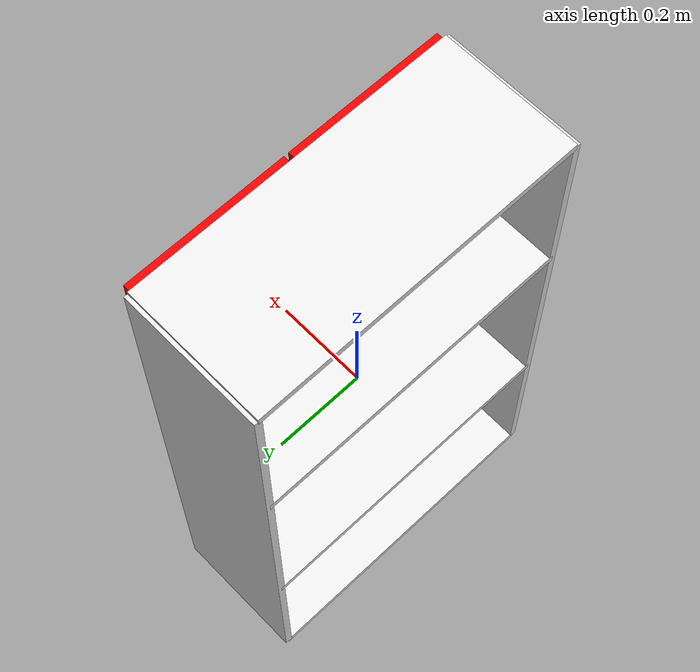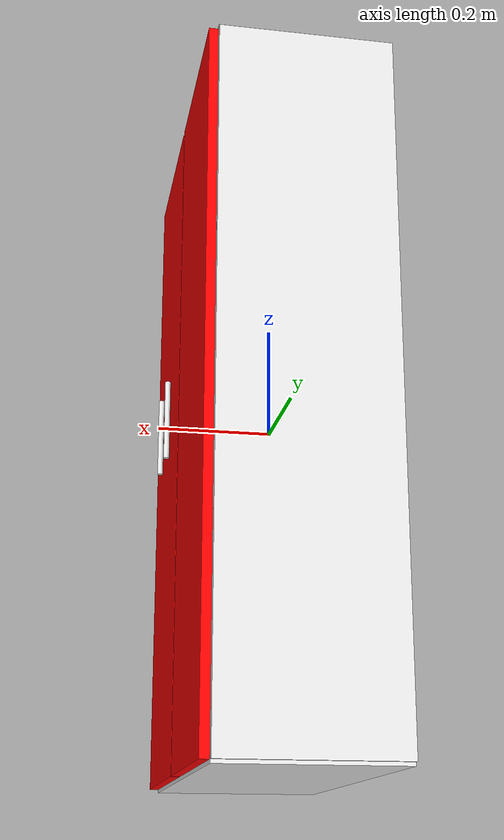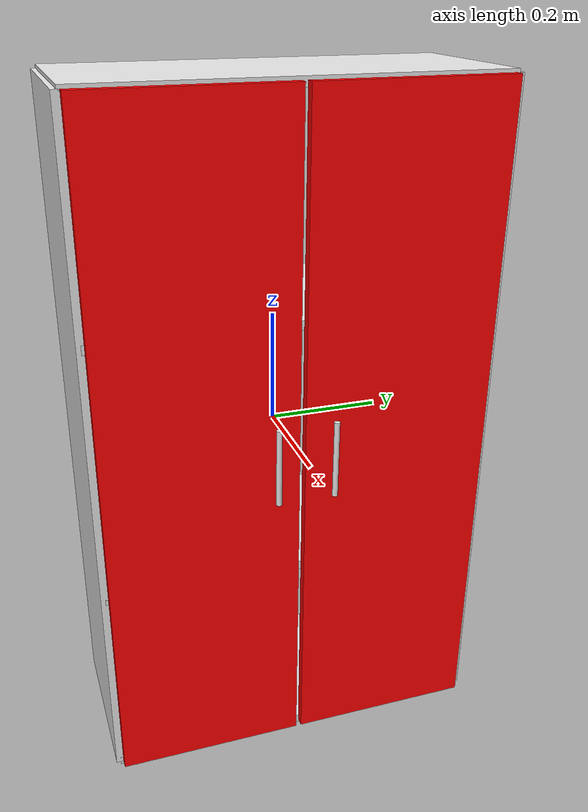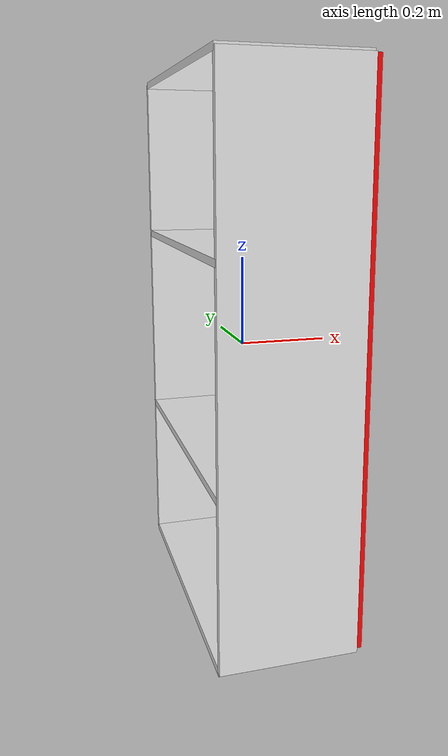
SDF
<?xml version="1.0"?>
<sdf version="1.7">
  <model name="cupboard">
    <link name="cupboard_body">
      <visual name="right_wall">
        <pose> 0 0.35 0 0 0 0</pose>
        <geometry>
          <box>
            <size>0.3 0.016 1.205</size>
          </box>
        </geometry>
        <material>
          <diffuse>0.9 0.9 0.9 1.0</diffuse>
        </material>
      </visual>
      <visual name="left_wall">
        <pose> 0 -0.35 0 0 0 0</pose>
        <geometry>
          <box>
            <size>0.3 0.016 1.205</size>
          </box>
        </geometry>
        <material>
          <diffuse>0.9 0.9 0.9 1.0</diffuse>
        </material>
      </visual>
      <collision name="right_wall">
        <pose> 0 0.35 0 0 0 0</pose>
        <geometry>
          <box>
            <size>0.3 0.016 1.205</size>
          </box>
        </geometry>
      </collision>
      <collision name="left_wall">
        <pose> 0 -0.35 0 0 0 0</pose>
        <geometry>
          <box>
            <size>0.3 0.016 1.205</size>
          </box>
        </geometry>
      </collision>
    </link>
    <link name="top_and_bottom">
      <visual name="bottom">
        <pose> 0 0 -0.6005 0 0 0</pose>
        <geometry>
          <box>
            <size>0.3 0.7 0.016</size>
          </box>
        </geometry>
        <material>
          <diffuse>0.9 0.9 0.9 1.0</diffuse>
        </material>
      </visual>
      <visual name="top">
        <pose> 0 0 0.6005 0 0 0</pose>
        <geometry>
          <box>
            <size>0.3 0.7 0.016</size>
          </box>
        </geometry>
        <material>
          <diffuse>0.9 0.9 0.9 1.0</diffuse>
        </material>
      </visual>
      <visual name="shelf_lower">
        <pose> 0 0 -0.23115 0 0 0</pose>
        <geometry>
          <box>
            <size>0.3 0.7 0.016</size>
          </box>
        </geometry>
        <material>
          <diffuse>0.9 0.9 0.9 1.0</diffuse>
        </material>
      </visual>
      <visual name="shelf_upper">
        <pose> 0 0 0.23115 0 0 0</pose>
        <geometry>
          <box>
            <size>0.3 0.7 0.016</size>
          </box>
        </geometry>
        <material>
          <diffuse>0.9 0.9 0.9 1.0</diffuse>
        </material>
      </visual>
      <collision name="bottom">
        <pose> 0 0 -0.6005 0 0 0</pose>
        <geometry>
          <box>
            <size>0.3 0.7 0.016</size>
          </box>
        </geometry>
      </collision>
      <collision name="top">
        <pose> 0 0 0.6005 0 0 0</pose>
        <geometry>
          <box>
            <size>0.3 0.7 0.016</size>
          </box>
        </geometry>
      </collision>
      <collision name="shelf_lower">
        <pose> 0 0 -0.23115 0 0 0</pose>
        <geometry>
          <box>
            <size>0.3 0.7 0.016</size>
          </box>
        </geometry>
      </collision>
      <collision name="shelf_upper">
        <pose> 0 0 0.23115 0 0 0</pose>
        <geometry>
          <box>
            <size>0.3 0.7 0.016</size>
          </box>
        </geometry>
      </collision>
    </link>
    <!-- joint between bottom_top and world -->
    <joint name="top_and_bottom_cupboard_body" type="fixed">
      <child>top_and_bottom</child>
      <parent>cupboard_body</parent>
    </joint>
    <!-- joint between cupboard_body and left_door -->
    <joint name="left_door_hinge" type="revolute">
      <child>left_door</child>
      <parent>cupboard_body</parent>
      <pose>-0.008 -0.1395 0 0 0 0</pose>
      <axis>
        <xyz> 0 0 1 </xyz>
        <limit>
          <effort>0</effort>
        </limit>
        <dynamics>
          <damping>1.0</damping>
        </dynamics>
      </axis>
    </joint>
    <link name="left_door">
      <pose> 0.158 -0.175 0 0 0 0</pose>
      <inertial>
        <mass>10</mass>
        <inertia>
          <ixx>0.01042</ixx>
          <ixy>0</ixy>
          <ixz>0</ixz>
          <iyy>0.00542</iyy>
          <iyz>0</iyz>
          <izz>0.00542</izz>
        </inertia>
      </inertial>
      <visual name="cylinder">
        <pose> 0.033 0.1245 0 0 0 0</pose>
        <geometry>
          <cylinder>
            <length>0.14</length>
            <radius>0.005</radius>
          </cylinder>
        </geometry>
        <material>
          <diffuse>0.9 0.9 0.9 1.0</diffuse>
        </material>
      </visual>
      <visual name="slab">
        <geometry>
          <box>
            <size>0.016 0.34 1.205</size>
          </box>
        </geometry>
        <material>
          <diffuse>1 0 0 1.0</diffuse>
        </material>
      </visual>
      <collision name="cylinder">
        <pose> 0.033 0.1245 0 0 0 0</pose>
        <geometry>
          <cylinder>
            <length>0.14</length>
            <radius>0.005</radius>
          </cylinder>
        </geometry>
      </collision>
      <collision name="slab">
        <geometry>
          <box>
            <size>0.016 0.34 1.205</size>
          </box>
        </geometry>
      </collision>
    </link>
    <!-- joint between cupboard_body and left_door -->
    <joint name="right_door_hinge" type="revolute">
      <child>right_door</child>
      <parent>cupboard_body</parent>
      <pose>-0.008 0.1395 0 0 0 0</pose>
      <axis>
        <xyz> 0 0 1 </xyz>
        <limit>
          <effort>0</effort>
        </limit>
        <dynamics>
          <damping>1.0</damping>
        </dynamics>
      </axis>
    </joint>
    <link name="right_door">
      <pose> 0.158 0.175 0 0 0 0</pose>
      <inertial>
        <mass>10</mass>
        <inertia>
          <ixx>0.01042</ixx>
          <ixy>0</ixy>
          <ixz>0</ixz>
          <iyy>0.00542</iyy>
          <iyz>0</iyz>
          <izz>0.00542</izz>
        </inertia>
      </inertial>
      <visual name="cylinder">
        <pose> 0.033 -0.1245 0 0 0 0</pose>
        <geometry>
          <cylinder>
            <length>0.14</length>
            <radius>0.005</radius>
          </cylinder>
        </geometry>
        <material>
          <diffuse>0.9 0.9 0.9 1.0</diffuse>
        </material>
      </visual>
      <visual name="slab">
        <geometry>
          <box>
            <size>0.016 0.34 1.205</size>
          </box>
        </geometry>
        <material>
          <diffuse>1 0 0 1.0</diffuse>
        </material>
      </visual>
      <collision name="cylinder">
        <pose> 0.033 -0.1245 0 0 0 0</pose>
        <geometry>
          <cylinder>
            <length>0.14</length>
            <radius>0.005</radius>
          </cylinder>
        </geometry>
      </collision>
      <collision name="slab">
        <geometry>
          <box>
            <size>0.016 0.34 1.205</size>
          </box>
        </geometry>
      </collision>
    </link>
  </model>
</sdf>
